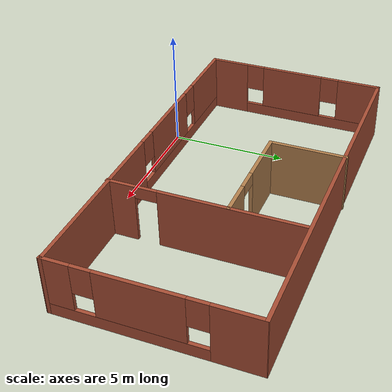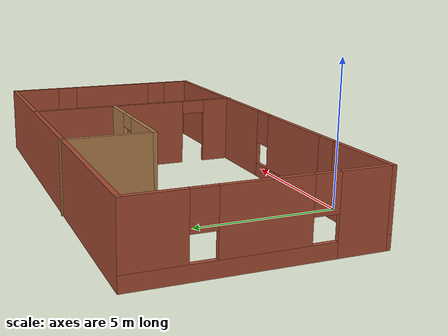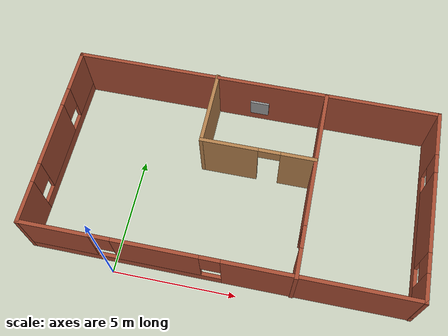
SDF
<?xml version='1.0'?>
<sdf version='1.6'>
  <model name='my_w'>
    <pose frame=''>4.16042 4.44068 0 0 -0 0</pose>
    <link name='Wall_0'>
      <pose frame=''>-7.59042 -0.005682 0 0 -0 1.5708</pose>
      <visual name='Wall_0_Visual_0'>
        <pose frame=''>-3.12831 0 1.25 0 -0 0</pose>
        <geometry>
          <box>
            <size>1.74339 0.15 2.5</size>
          </box>
        </geometry>
        <material>
          <script>
            <uri>file://media/materials/scripts/gazebo.material</uri>
            <name>Gazebo/Bricks</name>
          </script>
          <ambient>1 1 1 1</ambient>
        </material>
        <meta>
          <layer>0</layer>
        </meta>
      </visual>
      <collision name='Wall_0_Collision_0'>
        <geometry>
          <box>
            <size>1.74339 0.15 2.5</size>
          </box>
        </geometry>
        <pose frame=''>-3.12831 0 1.25 0 -0 0</pose>
      </collision>
      <visual name='Wall_0_Visual_1'>
        <pose frame=''>0.871695 0 0.25 0 -0 0</pose>
        <geometry>
          <box>
            <size>6.25661 0.15 0.5</size>
          </box>
        </geometry>
        <material>
          <script>
            <uri>file://media/materials/scripts/gazebo.material</uri>
            <name>Gazebo/Bricks</name>
          </script>
          <ambient>1 1 1 1</ambient>
        </material>
        <meta>
          <layer>0</layer>
        </meta>
      </visual>
      <collision name='Wall_0_Collision_1'>
        <geometry>
          <box>
            <size>6.25661 0.15 0.5</size>
          </box>
        </geometry>
        <pose frame=''>0.871695 0 0.25 0 -0 0</pose>
      </collision>
      <visual name='Wall_0_Visual_2'>
        <pose frame=''>-0.076564 0 1.5 0 -0 0</pose>
        <geometry>
          <box>
            <size>2.76009 0.15 2</size>
          </box>
        </geometry>
        <material>
          <script>
            <uri>file://media/materials/scripts/gazebo.material</uri>
            <name>Gazebo/Bricks</name>
          </script>
          <ambient>1 1 1 1</ambient>
        </material>
        <meta>
          <layer>0</layer>
        </meta>
      </visual>
      <collision name='Wall_0_Collision_2'>
        <geometry>
          <box>
            <size>2.76009 0.15 2</size>
          </box>
        </geometry>
        <pose frame=''>-0.076564 0 1.5 0 -0 0</pose>
      </collision>
      <visual name='Wall_0_Visual_3'>
        <pose frame=''>3.05174 0 1.5 0 -0 0</pose>
        <geometry>
          <box>
            <size>1.89652 0.15 2</size>
          </box>
        </geometry>
        <material>
          <script>
            <uri>file://media/materials/scripts/gazebo.material</uri>
            <name>Gazebo/Bricks</name>
          </script>
          <ambient>1 1 1 1</ambient>
        </material>
        <meta>
          <layer>0</layer>
        </meta>
      </visual>
      <collision name='Wall_0_Collision_3'>
        <geometry>
          <box>
            <size>1.89652 0.15 2</size>
          </box>
        </geometry>
        <pose frame=''>3.05174 0 1.5 0 -0 0</pose>
      </collision>
      <visual name='Wall_0_Visual_4'>
        <pose frame=''>-1.85661 0 1.9 0 -0 0</pose>
        <geometry>
          <box>
            <size>0.8 0.15 1.2</size>
          </box>
        </geometry>
        <material>
          <script>
            <uri>file://media/materials/scripts/gazebo.material</uri>
            <name>Gazebo/Bricks</name>
          </script>
          <ambient>1 1 1 1</ambient>
        </material>
        <meta>
          <layer>0</layer>
        </meta>
      </visual>
      <collision name='Wall_0_Collision_4'>
        <geometry>
          <box>
            <size>0.8 0.15 1.2</size>
          </box>
        </geometry>
        <pose frame=''>-1.85661 0 1.9 0 -0 0</pose>
      </collision>
      <visual name='Wall_0_Visual_5'>
        <pose frame=''>1.70348 0 1.9 0 -0 0</pose>
        <geometry>
          <box>
            <size>0.8 0.15 1.2</size>
          </box>
        </geometry>
        <material>
          <script>
            <uri>file://media/materials/scripts/gazebo.material</uri>
            <name>Gazebo/Bricks</name>
          </script>
          <ambient>1 1 1 1</ambient>
        </material>
        <meta>
          <layer>0</layer>
        </meta>
      </visual>
      <collision name='Wall_0_Collision_5'>
        <geometry>
          <box>
            <size>0.8 0.15 1.2</size>
          </box>
        </geometry>
        <pose frame=''>1.70348 0 1.9 0 -0 0</pose>
      </collision>
    </link>
    <link name='Wall_1'>
      <collision name='Wall_1_Collision'>
        <geometry>
          <box>
            <size>15.3308 0.15 2.5</size>
          </box>
        </geometry>
        <pose frame=''>0 0 1.25 0 -0 0</pose>
      </collision>
      <visual name='Wall_1_Visual'>
        <pose frame=''>0 0 1.25 0 -0 0</pose>
        <geometry>
          <box>
            <size>15.3308 0.15 2.5</size>
          </box>
        </geometry>
        <material>
          <script>
            <uri>file://media/materials/scripts/gazebo.material</uri>
            <name>Gazebo/Bricks</name>
          </script>
          <ambient>1 1 1 1</ambient>
        </material>
        <meta>
          <layer>0</layer>
        </meta>
      </visual>
      <pose frame=''>0 3.91932 0 0 -0 0</pose>
    </link>
    <link name='Wall_2'>
      <pose frame=''>7.59042 -0.032282 0 0 0 -1.5708</pose>
      <visual name='Wall_2_Visual_0'>
        <pose frame=''>-3.04481 0 1.25 0 -0 0</pose>
        <geometry>
          <box>
            <size>1.91037 0.15 2.5</size>
          </box>
        </geometry>
        <material>
          <script>
            <uri>file://media/materials/scripts/gazebo.material</uri>
            <name>Gazebo/Bricks</name>
          </script>
          <ambient>1 1 1 1</ambient>
        </material>
        <meta>
          <layer>0</layer>
        </meta>
      </visual>
      <collision name='Wall_2_Collision_0'>
        <geometry>
          <box>
            <size>1.91037 0.15 2.5</size>
          </box>
        </geometry>
        <pose frame=''>-3.04481 0 1.25 0 -0 0</pose>
      </collision>
      <visual name='Wall_2_Visual_1'>
        <pose frame=''>0.955187 0 0.25 0 -0 0</pose>
        <geometry>
          <box>
            <size>6.08963 0.15 0.5</size>
          </box>
        </geometry>
        <material>
          <script>
            <uri>file://media/materials/scripts/gazebo.material</uri>
            <name>Gazebo/Bricks</name>
          </script>
          <ambient>1 1 1 1</ambient>
        </material>
        <meta>
          <layer>0</layer>
        </meta>
      </visual>
      <collision name='Wall_2_Collision_1'>
        <geometry>
          <box>
            <size>6.08963 0.15 0.5</size>
          </box>
        </geometry>
        <pose frame=''>0.955187 0 0.25 0 -0 0</pose>
      </collision>
      <visual name='Wall_2_Visual_2'>
        <pose frame=''>0.373608 0 1.5 0 -0 0</pose>
        <geometry>
          <box>
            <size>3.32647 0.15 2</size>
          </box>
        </geometry>
        <material>
          <script>
            <uri>file://media/materials/scripts/gazebo.material</uri>
            <name>Gazebo/Bricks</name>
          </script>
          <ambient>1 1 1 1</ambient>
        </material>
        <meta>
          <layer>0</layer>
        </meta>
      </visual>
      <collision name='Wall_2_Collision_2'>
        <geometry>
          <box>
            <size>3.32647 0.15 2</size>
          </box>
        </geometry>
        <pose frame=''>0.373608 0 1.5 0 -0 0</pose>
      </collision>
      <visual name='Wall_2_Visual_3'>
        <pose frame=''>3.41842 0 1.5 0 -0 0</pose>
        <geometry>
          <box>
            <size>1.16316 0.15 2</size>
          </box>
        </geometry>
        <material>
          <script>
            <uri>file://media/materials/scripts/gazebo.material</uri>
            <name>Gazebo/Bricks</name>
          </script>
          <ambient>1 1 1 1</ambient>
        </material>
        <meta>
          <layer>0</layer>
        </meta>
      </visual>
      <collision name='Wall_2_Collision_3'>
        <geometry>
          <box>
            <size>1.16316 0.15 2</size>
          </box>
        </geometry>
        <pose frame=''>3.41842 0 1.5 0 -0 0</pose>
      </collision>
      <visual name='Wall_2_Visual_4'>
        <pose frame=''>-1.68963 0 1.9 0 -0 0</pose>
        <geometry>
          <box>
            <size>0.8 0.15 1.2</size>
          </box>
        </geometry>
        <material>
          <script>
            <uri>file://media/materials/scripts/gazebo.material</uri>
            <name>Gazebo/Bricks</name>
          </script>
          <ambient>1 1 1 1</ambient>
        </material>
        <meta>
          <layer>0</layer>
        </meta>
      </visual>
      <collision name='Wall_2_Collision_4'>
        <geometry>
          <box>
            <size>0.8 0.15 1.2</size>
          </box>
        </geometry>
        <pose frame=''>-1.68963 0 1.9 0 -0 0</pose>
      </collision>
      <visual name='Wall_2_Visual_5'>
        <pose frame=''>2.43684 0 1.9 0 -0 0</pose>
        <geometry>
          <box>
            <size>0.8 0.15 1.2</size>
          </box>
        </geometry>
        <material>
          <script>
            <uri>file://media/materials/scripts/gazebo.material</uri>
            <name>Gazebo/Bricks</name>
          </script>
          <ambient>1 1 1 1</ambient>
        </material>
        <meta>
          <layer>0</layer>
        </meta>
      </visual>
      <collision name='Wall_2_Collision_5'>
        <geometry>
          <box>
            <size>0.8 0.15 1.2</size>
          </box>
        </geometry>
        <pose frame=''>2.43684 0 1.9 0 -0 0</pose>
      </collision>
    </link>
    <link name='Wall_3'>
      <pose frame=''>0 -3.93068 0 0 -0 3.14159</pose>
      <visual name='Wall_3_Visual_0'>
        <pose frame=''>-3.92166 0 1.25 0 -0 0</pose>
        <geometry>
          <box>
            <size>7.48752 0.15 2.5</size>
          </box>
        </geometry>
        <material>
          <script>
            <uri>file://media/materials/scripts/gazebo.material</uri>
            <name>Gazebo/Bricks</name>
          </script>
          <ambient>1 1 1 1</ambient>
        </material>
        <meta>
          <layer>0</layer>
        </meta>
      </visual>
      <collision name='Wall_3_Collision_0'>
        <geometry>
          <box>
            <size>7.48752 0.15 2.5</size>
          </box>
        </geometry>
        <pose frame=''>-3.92166 0 1.25 0 -0 0</pose>
      </collision>
      <visual name='Wall_3_Visual_1'>
        <pose frame=''>3.74376 0 0.25 0 -0 0</pose>
        <geometry>
          <box>
            <size>7.84333 0.15 0.5</size>
          </box>
        </geometry>
        <material>
          <script>
            <uri>file://media/materials/scripts/gazebo.material</uri>
            <name>Gazebo/Bricks</name>
          </script>
          <ambient>1 1 1 1</ambient>
        </material>
        <meta>
          <layer>0</layer>
        </meta>
      </visual>
      <collision name='Wall_3_Collision_1'>
        <geometry>
          <box>
            <size>7.84333 0.15 0.5</size>
          </box>
        </geometry>
        <pose frame=''>3.74376 0 0.25 0 -0 0</pose>
      </collision>
      <visual name='Wall_3_Visual_2'>
        <pose frame=''>2.30556 0 1.5 0 -0 0</pose>
        <geometry>
          <box>
            <size>3.36692 0.15 2</size>
          </box>
        </geometry>
        <material>
          <script>
            <uri>file://media/materials/scripts/gazebo.material</uri>
            <name>Gazebo/Bricks</name>
          </script>
          <ambient>1 1 1 1</ambient>
        </material>
        <meta>
          <layer>0</layer>
        </meta>
      </visual>
      <collision name='Wall_3_Collision_2'>
        <geometry>
          <box>
            <size>3.36692 0.15 2</size>
          </box>
        </geometry>
        <pose frame=''>2.30556 0 1.5 0 -0 0</pose>
      </collision>
      <visual name='Wall_3_Visual_3'>
        <pose frame=''>6.22722 0 1.5 0 -0 0</pose>
        <geometry>
          <box>
            <size>2.8764 0.15 2</size>
          </box>
        </geometry>
        <material>
          <script>
            <uri>file://media/materials/scripts/gazebo.material</uri>
            <name>Gazebo/Bricks</name>
          </script>
          <ambient>1 1 1 1</ambient>
        </material>
        <meta>
          <layer>0</layer>
        </meta>
      </visual>
      <collision name='Wall_3_Collision_3'>
        <geometry>
          <box>
            <size>2.8764 0.15 2</size>
          </box>
        </geometry>
        <pose frame=''>6.22722 0 1.5 0 -0 0</pose>
      </collision>
      <visual name='Wall_3_Visual_4'>
        <pose frame=''>0.222097 0 1.9 0 -0 0</pose>
        <geometry>
          <box>
            <size>0.8 0.15 1.2</size>
          </box>
        </geometry>
        <material>
          <script>
            <uri>file://media/materials/scripts/gazebo.material</uri>
            <name>Gazebo/Bricks</name>
          </script>
          <ambient>1 1 1 1</ambient>
        </material>
        <meta>
          <layer>0</layer>
        </meta>
      </visual>
      <collision name='Wall_3_Collision_4'>
        <geometry>
          <box>
            <size>0.8 0.15 1.2</size>
          </box>
        </geometry>
        <pose frame=''>0.222097 0 1.9 0 -0 0</pose>
      </collision>
      <visual name='Wall_3_Visual_5'>
        <pose frame=''>4.38902 0 1.9 0 -0 0</pose>
        <geometry>
          <box>
            <size>0.8 0.15 1.2</size>
          </box>
        </geometry>
        <material>
          <script>
            <uri>file://media/materials/scripts/gazebo.material</uri>
            <name>Gazebo/Bricks</name>
          </script>
          <ambient>1 1 1 1</ambient>
        </material>
        <meta>
          <layer>0</layer>
        </meta>
      </visual>
      <collision name='Wall_3_Collision_5'>
        <geometry>
          <box>
            <size>0.8 0.15 1.2</size>
          </box>
        </geometry>
        <pose frame=''>4.38902 0 1.9 0 -0 0</pose>
      </collision>
    </link>
    <link name='Wall_6'>
      <pose frame=''>2.97216 -0.042149 0 0 -0 1.5708</pose>
      <visual name='Wall_6_Visual_0'>
        <pose frame=''>-3.39803 0 1.25 0 -0 0</pose>
        <geometry>
          <box>
            <size>1.20393 0.15 2.5</size>
          </box>
        </geometry>
        <material>
          <script>
            <uri>file://media/materials/scripts/gazebo.material</uri>
            <name>Gazebo/Bricks</name>
          </script>
          <ambient>1 1 1 1</ambient>
        </material>
        <meta>
          <layer>0</layer>
        </meta>
      </visual>
      <collision name='Wall_6_Collision_0'>
        <geometry>
          <box>
            <size>1.20393 0.15 2.5</size>
          </box>
        </geometry>
        <pose frame=''>-3.39803 0 1.25 0 -0 0</pose>
      </collision>
      <visual name='Wall_6_Visual_1'>
        <pose frame=''>1.05197 0 1.25 0 -0 0</pose>
        <geometry>
          <box>
            <size>5.89607 0.15 2.5</size>
          </box>
        </geometry>
        <material>
          <script>
            <uri>file://media/materials/scripts/gazebo.material</uri>
            <name>Gazebo/Bricks</name>
          </script>
          <ambient>1 1 1 1</ambient>
        </material>
        <meta>
          <layer>0</layer>
        </meta>
      </visual>
      <collision name='Wall_6_Collision_1'>
        <geometry>
          <box>
            <size>5.89607 0.15 2.5</size>
          </box>
        </geometry>
        <pose frame=''>1.05197 0 1.25 0 -0 0</pose>
      </collision>
      <visual name='Wall_6_Visual_2'>
        <pose frame=''>-2.34606 0 2.25 0 -0 0</pose>
        <geometry>
          <box>
            <size>0.9 0.15 0.5</size>
          </box>
        </geometry>
        <material>
          <script>
            <uri>file://media/materials/scripts/gazebo.material</uri>
            <name>Gazebo/Bricks</name>
          </script>
          <ambient>1 1 1 1</ambient>
        </material>
        <meta>
          <layer>0</layer>
        </meta>
      </visual>
      <collision name='Wall_6_Collision_2'>
        <geometry>
          <box>
            <size>0.9 0.15 0.5</size>
          </box>
        </geometry>
        <pose frame=''>-2.34606 0 2.25 0 -0 0</pose>
      </collision>
    </link>
    <link name='Wall_8'>
      <pose frame=''>0.649035 0.867148 0 0 -0 3.14159</pose>
      <visual name='Wall_8_Visual_0'>
        <pose frame=''>-1.64445 0 1.25 0 -0 0</pose>
        <geometry>
          <box>
            <size>1.4611 0.15 2.5</size>
          </box>
        </geometry>
        <material>
          <script>
            <uri>file://media/materials/scripts/gazebo.material</uri>
            <name>Gazebo/Wood</name>
          </script>
          <ambient>1 1 1 1</ambient>
        </material>
        <meta>
          <layer>0</layer>
        </meta>
      </visual>
      <collision name='Wall_8_Collision_0'>
        <geometry>
          <box>
            <size>1.4611 0.15 2.5</size>
          </box>
        </geometry>
        <pose frame=''>-1.64445 0 1.25 0 -0 0</pose>
      </collision>
      <visual name='Wall_8_Visual_1'>
        <pose frame=''>1.18055 0 1.25 0 -0 0</pose>
        <geometry>
          <box>
            <size>2.3889 0.15 2.5</size>
          </box>
        </geometry>
        <material>
          <script>
            <uri>file://media/materials/scripts/gazebo.material</uri>
            <name>Gazebo/Wood</name>
          </script>
          <ambient>1 1 1 1</ambient>
        </material>
        <meta>
          <layer>0</layer>
        </meta>
      </visual>
      <collision name='Wall_8_Collision_1'>
        <geometry>
          <box>
            <size>2.3889 0.15 2.5</size>
          </box>
        </geometry>
        <pose frame=''>1.18055 0 1.25 0 -0 0</pose>
      </collision>
      <visual name='Wall_8_Visual_2'>
        <pose frame=''>-0.463903 0 2.25 0 -0 0</pose>
        <geometry>
          <box>
            <size>0.9 0.15 0.5</size>
          </box>
        </geometry>
        <material>
          <script>
            <uri>file://media/materials/scripts/gazebo.material</uri>
            <name>Gazebo/Wood</name>
          </script>
          <ambient>1 1 1 1</ambient>
        </material>
        <meta>
          <layer>0</layer>
        </meta>
      </visual>
      <collision name='Wall_8_Collision_2'>
        <geometry>
          <box>
            <size>0.9 0.15 0.5</size>
          </box>
        </geometry>
        <pose frame=''>-0.463903 0 2.25 0 -0 0</pose>
      </collision>
    </link>
    <link name='Wall_9'>
      <collision name='Wall_9_Collision'>
        <geometry>
          <box>
            <size>3.25 0.15 2.5</size>
          </box>
        </geometry>
        <pose frame=''>0 0 1.25 0 -0 0</pose>
      </collision>
      <visual name='Wall_9_Visual'>
        <pose frame=''>0 0 1.25 0 -0 0</pose>
        <geometry>
          <box>
            <size>3.25 0.15 2.5</size>
          </box>
        </geometry>
        <material>
          <script>
            <uri>file://media/materials/scripts/gazebo.material</uri>
            <name>Gazebo/Wood</name>
          </script>
          <ambient>1 1 1 1</ambient>
        </material>
        <meta>
          <layer>0</layer>
        </meta>
      </visual>
      <pose frame=''>-1.65097 2.41715 0 0 -0 1.5708</pose>
    </link>
    <link name='Window_4'>
      <collision name='Window_4_Collision'>
        <geometry>
          <box>
            <size>0.8 0.17 0.8</size>
          </box>
        </geometry>
        <pose frame=''>0 0 0.4 0 -0 0</pose>
      </collision>
      <visual name='Window_4_Visual'>
        <pose frame=''>0 0 0.4 0 -0 0</pose>
        <geometry>
          <box>
            <size>0.8 0.17 0.8</size>
          </box>
        </geometry>
        <material>
          <script>
            <uri>file://media/materials/scripts/gazebo.material</uri>
            <name>Gazebo/Grey</name>
          </script>
        </material>
      </visual>
      <pose frame=''>0.222915 3.84194 0.5 0 -0 0</pose>
    </link>
    <static>1</static>
  </model>
</sdf>
